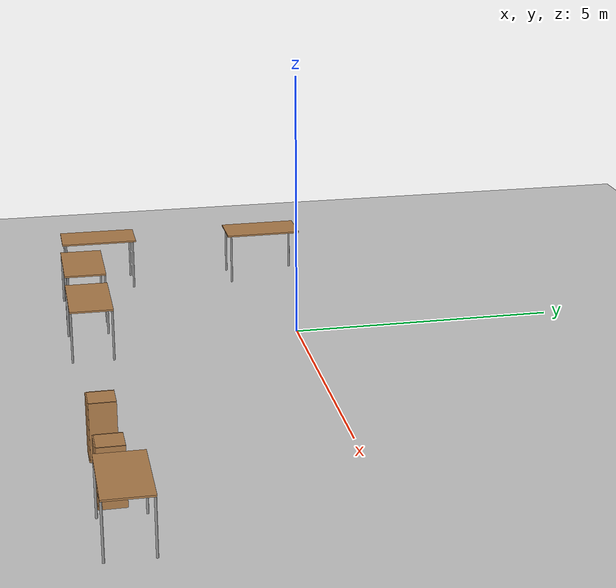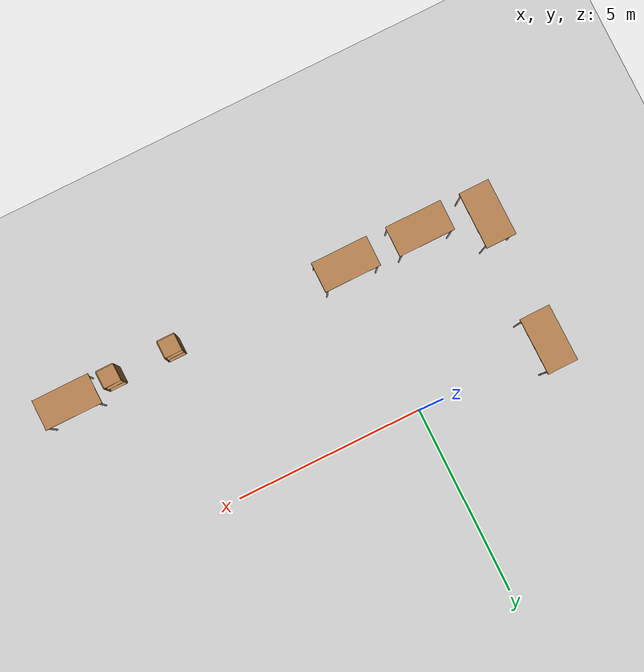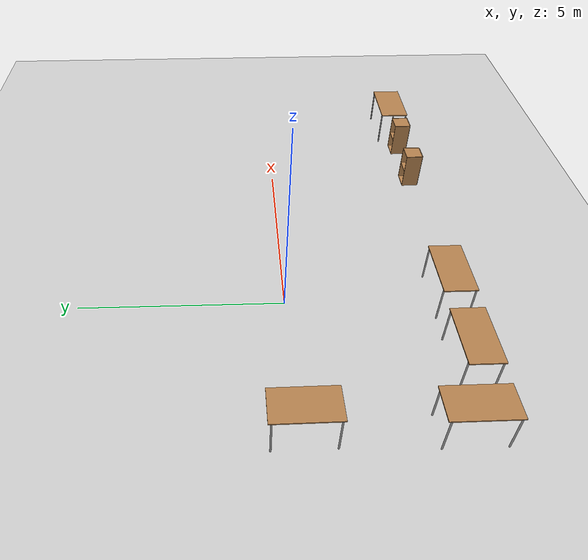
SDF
<sdf version="1.6">
 <world name="default">
  <model name="ground_plane">
   <static>1</static>
   <link name="link">
    <collision name="collision">
     <geometry><plane><normal>0 0 1</normal><size>100 100</size></plane></geometry>
     <surface><friction><ode><mu>100</mu><mu2>50</mu2></ode></friction></surface>
    </collision>
    <visual name="visual">
     <cast_shadows>0</cast_shadows>
     <geometry><plane><normal>0 0 1</normal><size>100 100</size></plane></geometry>
     <material>
      <script><uri>file://media/materials/scripts/gazebo.material</uri><name>Gazebo/Grey</name></script>
     </material>
    </visual>
   </link>
  </model>
  <model name="cabinet_0">
   <static>1</static>
   <link name="cabinet_bottom_plate">
    <inertial>
     <pose>0 0 -1 0 -0 0</pose>
     <inertia><ixx>2.05</ixx><ixy>0</ixy><ixz>0</ixz><iyy>2.05</iyy><iyz>0</iyz><izz>2.05</izz></inertia>
     <mass>25</mass>
    </inertial>
    <collision name="cabinet_bottom_plate_geom">
     <pose>0 0 0.01 0 -0 0</pose>
     <geometry><box><size>0.45 0.45 0.02</size></box></geometry>
    </collision>
    <visual name="cabinet_bottom_plate_geom_visual">
     <pose>0 0 0.01 0 -0 0</pose>
     <geometry><box><size>0.45 0.45 0.02</size></box></geometry>
     <material>
      <script><uri>file://media/materials/scripts/gazebo.material</uri><name>Gazebo/Wood</name></script>
     </material>
    </visual>
    <collision name="cabinet_bottom_plate_geom_cabinet_back_plate">
     <pose>0.235 0 0.51 0 -0 0</pose>
     <geometry><box><size>0.02 0.45 1.02</size></box></geometry>
    </collision>
    <visual name="cabinet_bottom_plate_geom_cabinet_back_plate_visual">
     <pose>0.235 0 0.51 0 -0 0</pose>
     <geometry><box><size>0.02 0.45 1.02</size></box></geometry>
     <material>
      <script><uri>file://media/materials/scripts/gazebo.material</uri><name>Gazebo/Wood</name></script>
     </material>
    </visual>
    <collision name="cabinet_bottom_plate_geom_cabinet_left_plate">
     <pose>0 0.235 0.51 0 -0 0</pose>
     <geometry><box><size>0.45 0.02 1.02</size></box></geometry>
    </collision>
    <visual name="cabinet_bottom_plate_geom_cabinet_left_plate_visual">
     <pose>0 0.235 0.51 0 -0 0</pose>
     <geometry><box><size>0.45 0.02 1.02</size></box></geometry>
     <material>
      <script><uri>file://media/materials/scripts/gazebo.material</uri><name>Gazebo/Wood</name></script>
     </material>
    </visual>
    <collision name="cabinet_bottom_plate_geom_cabinet_middle_plate">
     <pose>0 0 0.51 0 -0 0</pose>
     <geometry><box><size>0.45 0.45 0.02</size></box></geometry>
    </collision>
    <visual name="cabinet_bottom_plate_geom_cabinet_middle_plate_visual">
     <pose>0 0 0.51 0 -0 0</pose>
     <geometry><box><size>0.45 0.45 0.02</size></box></geometry>
     <material>
      <script><uri>file://media/materials/scripts/gazebo.material</uri><name>Gazebo/Wood</name></script>
     </material>
    </visual>
    <collision name="cabinet_bottom_plate_geom_cabinet_right_plate">
     <pose>0 -0.235 0.51 0 -0 0</pose>
     <geometry><box><size>0.45 0.02 1.02</size></box></geometry>
    </collision>
    <visual name="cabinet_bottom_plate_geom_cabinet_right_plate_visual">
     <pose>0 -0.235 0.51 0 -0 0</pose>
     <geometry><box><size>0.45 0.02 1.02</size></box></geometry>
     <material>
      <script><uri>file://media/materials/scripts/gazebo.material</uri><name>Gazebo/Wood</name></script>
     </material>
    </visual>
    <collision name="cabinet_bottom_plate_geom_cabinet_top_plate">
     <pose>0 0 1.01 0 -0 0</pose>
     <geometry><box><size>0.45 0.45 0.02</size></box></geometry>
    </collision>
    <visual name="cabinet_bottom_plate_geom_cabinet_top_plate_visual">
     <pose>0 0 1.01 0 -0 0</pose>
     <geometry><box><size>0.45 0.45 0.02</size></box></geometry>
     <material>
      <script><uri>file://media/materials/scripts/gazebo.material</uri><name>Gazebo/Wood</name></script>
     </material>
    </visual>
   </link>
   <pose>6.4587 -4.07746 0 0 0 -1.56429</pose>
  </model>
  <model name="cabinet_0_clone">
   <static>1</static>
   <link name="cabinet_bottom_plate">
    <inertial>
     <pose>0 0 -1 0 -0 0</pose>
     <inertia><ixx>2.05</ixx><ixy>0</ixy><ixz>0</ixz><iyy>2.05</iyy><iyz>0</iyz><izz>2.05</izz></inertia>
     <mass>25</mass>
    </inertial>
    <collision name="cabinet_bottom_plate_geom">
     <pose>0 0 0.01 0 -0 0</pose>
     <geometry><box><size>0.45 0.45 0.02</size></box></geometry>
    </collision>
    <visual name="cabinet_bottom_plate_geom_visual">
     <pose>0 0 0.01 0 -0 0</pose>
     <geometry><box><size>0.45 0.45 0.02</size></box></geometry>
     <material>
      <script><uri>file://media/materials/scripts/gazebo.material</uri><name>Gazebo/Wood</name></script>
     </material>
    </visual>
    <collision name="cabinet_bottom_plate_geom_cabinet_back_plate">
     <pose>0.235 0 0.51 0 -0 0</pose>
     <geometry><box><size>0.02 0.45 1.02</size></box></geometry>
    </collision>
    <visual name="cabinet_bottom_plate_geom_cabinet_back_plate_visual">
     <pose>0.235 0 0.51 0 -0 0</pose>
     <geometry><box><size>0.02 0.45 1.02</size></box></geometry>
     <material>
      <script><uri>file://media/materials/scripts/gazebo.material</uri><name>Gazebo/Wood</name></script>
     </material>
    </visual>
    <collision name="cabinet_bottom_plate_geom_cabinet_left_plate">
     <pose>0 0.235 0.51 0 -0 0</pose>
     <geometry><box><size>0.45 0.02 1.02</size></box></geometry>
    </collision>
    <visual name="cabinet_bottom_plate_geom_cabinet_left_plate_visual">
     <pose>0 0.235 0.51 0 -0 0</pose>
     <geometry><box><size>0.45 0.02 1.02</size></box></geometry>
     <material>
      <script><uri>file://media/materials/scripts/gazebo.material</uri><name>Gazebo/Wood</name></script>
     </material>
    </visual>
    <collision name="cabinet_bottom_plate_geom_cabinet_middle_plate">
     <pose>0 0 0.51 0 -0 0</pose>
     <geometry><box><size>0.45 0.45 0.02</size></box></geometry>
    </collision>
    <visual name="cabinet_bottom_plate_geom_cabinet_middle_plate_visual">
     <pose>0 0 0.51 0 -0 0</pose>
     <geometry><box><size>0.45 0.45 0.02</size></box></geometry>
     <material>
      <script><uri>file://media/materials/scripts/gazebo.material</uri><name>Gazebo/Wood</name></script>
     </material>
    </visual>
    <collision name="cabinet_bottom_plate_geom_cabinet_right_plate">
     <pose>0 -0.235 0.51 0 -0 0</pose>
     <geometry><box><size>0.45 0.02 1.02</size></box></geometry>
    </collision>
    <visual name="cabinet_bottom_plate_geom_cabinet_right_plate_visual">
     <pose>0 -0.235 0.51 0 -0 0</pose>
     <geometry><box><size>0.45 0.02 1.02</size></box></geometry>
     <material>
      <script><uri>file://media/materials/scripts/gazebo.material</uri><name>Gazebo/Wood</name></script>
     </material>
    </visual>
    <collision name="cabinet_bottom_plate_geom_cabinet_top_plate">
     <pose>0 0 1.01 0 -0 0</pose>
     <geometry><box><size>0.45 0.45 0.02</size></box></geometry>
    </collision>
    <visual name="cabinet_bottom_plate_geom_cabinet_top_plate_visual">
     <pose>0 0 1.01 0 -0 0</pose>
     <geometry><box><size>0.45 0.45 0.02</size></box></geometry>
     <material>
      <script><uri>file://media/materials/scripts/gazebo.material</uri><name>Gazebo/Wood</name></script>
     </material>
    </visual>
   </link>
   <pose>4.81501 -4.07864 0 0 0 -1.56429</pose>
  </model>
  <model name="table">
   <static>1</static>
   <link name="link">
    <collision name="surface">
     <pose>0 0 1 0 -0 0</pose>
     <geometry><box><size>1.5 0.8 0.03</size></box></geometry>
     <surface><friction><ode><mu>0.6</mu><mu2>0.6</mu2></ode></friction></surface>
    </collision>
    <visual name="visual1">
     <pose>0 0 1 0 -0 0</pose>
     <geometry><box><size>1.5 0.8 0.03</size></box></geometry>
     <material>
      <script><uri>file://media/materials/scripts/gazebo.material</uri><name>Gazebo/Wood</name></script>
     </material>
    </visual>
    <collision name="front_left_leg">
     <pose>0.68 0.38 0.5 0 -0 0</pose>
     <geometry><cylinder><radius>0.02</radius><length>1</length></cylinder></geometry>
    </collision>
    <visual name="front_left_leg">
     <pose>0.68 0.38 0.5 0 -0 0</pose>
     <geometry><cylinder><radius>0.02</radius><length>1</length></cylinder></geometry>
     <material>
      <script><uri>file://media/materials/scripts/gazebo.material</uri><name>Gazebo/Grey</name></script>
     </material>
    </visual>
    <collision name="front_right_leg">
     <pose>0.68 -0.38 0.5 0 -0 0</pose>
     <geometry><cylinder><radius>0.02</radius><length>1</length></cylinder></geometry>
    </collision>
    <visual name="front_right_leg">
     <pose>0.68 -0.38 0.5 0 -0 0</pose>
     <geometry><cylinder><radius>0.02</radius><length>1</length></cylinder></geometry>
     <material>
      <script><uri>file://media/materials/scripts/gazebo.material</uri><name>Gazebo/Grey</name></script>
     </material>
    </visual>
    <collision name="back_right_leg">
     <pose>-0.68 -0.38 0.5 0 -0 0</pose>
     <geometry><cylinder><radius>0.02</radius><length>1</length></cylinder></geometry>
    </collision>
    <visual name="back_right_leg">
     <pose>-0.68 -0.38 0.5 0 -0 0</pose>
     <geometry><cylinder><radius>0.02</radius><length>1</length></cylinder></geometry>
     <material>
      <script><uri>file://media/materials/scripts/gazebo.material</uri><name>Gazebo/Grey</name></script>
     </material>
    </visual>
    <collision name="back_left_leg">
     <pose>-0.68 0.38 0.5 0 -0 0</pose>
     <geometry><cylinder><radius>0.02</radius><length>1</length></cylinder></geometry>
    </collision>
    <visual name="back_left_leg">
     <pose>-0.68 0.38 0.5 0 -0 0</pose>
     <geometry><cylinder><radius>0.02</radius><length>1</length></cylinder></geometry>
     <material>
      <script><uri>file://media/materials/scripts/gazebo.material</uri><name>Gazebo/Grey</name></script>
     </material>
    </visual>
   </link>
   <pose>-1.90718 -3.94116 0 0 -0 0</pose>
  </model>
  <model name="table_0">
   <static>1</static>
   <link name="link">
    <collision name="surface">
     <pose>0 0 1 0 -0 0</pose>
     <geometry><box><size>1.5 0.8 0.03</size></box></geometry>
     <surface><friction><ode><mu>0.6</mu><mu2>0.6</mu2></ode></friction></surface>
    </collision>
    <visual name="visual1">
     <pose>0 0 1 0 -0 0</pose>
     <geometry><box><size>1.5 0.8 0.03</size></box></geometry>
     <material>
      <script><uri>file://media/materials/scripts/gazebo.material</uri><name>Gazebo/Wood</name></script>
     </material>
    </visual>
    <collision name="front_left_leg">
     <pose>0.68 0.38 0.5 0 -0 0</pose>
     <geometry><cylinder><radius>0.02</radius><length>1</length></cylinder></geometry>
    </collision>
    <visual name="front_left_leg">
     <pose>0.68 0.38 0.5 0 -0 0</pose>
     <geometry><cylinder><radius>0.02</radius><length>1</length></cylinder></geometry>
     <material>
      <script><uri>file://media/materials/scripts/gazebo.material</uri><name>Gazebo/Grey</name></script>
     </material>
    </visual>
    <collision name="front_right_leg">
     <pose>0.68 -0.38 0.5 0 -0 0</pose>
     <geometry><cylinder><radius>0.02</radius><length>1</length></cylinder></geometry>
    </collision>
    <visual name="front_right_leg">
     <pose>0.68 -0.38 0.5 0 -0 0</pose>
     <geometry><cylinder><radius>0.02</radius><length>1</length></cylinder></geometry>
     <material>
      <script><uri>file://media/materials/scripts/gazebo.material</uri><name>Gazebo/Grey</name></script>
     </material>
    </visual>
    <collision name="back_right_leg">
     <pose>-0.68 -0.38 0.5 0 -0 0</pose>
     <geometry><cylinder><radius>0.02</radius><length>1</length></cylinder></geometry>
    </collision>
    <visual name="back_right_leg">
     <pose>-0.68 -0.38 0.5 0 -0 0</pose>
     <geometry><cylinder><radius>0.02</radius><length>1</length></cylinder></geometry>
     <material>
      <script><uri>file://media/materials/scripts/gazebo.material</uri><name>Gazebo/Grey</name></script>
     </material>
    </visual>
    <collision name="back_left_leg">
     <pose>-0.68 0.38 0.5 0 -0 0</pose>
     <geometry><cylinder><radius>0.02</radius><length>1</length></cylinder></geometry>
    </collision>
    <visual name="back_left_leg">
     <pose>-0.68 0.38 0.5 0 -0 0</pose>
     <geometry><cylinder><radius>0.02</radius><length>1</length></cylinder></geometry>
     <material>
      <script><uri>file://media/materials/scripts/gazebo.material</uri><name>Gazebo/Grey</name></script>
     </material>
    </visual>
   </link>
   <pose>0.099265 -3.95989 0 0 -0 0</pose>
  </model>
  <model name="table_1">
   <static>1</static>
   <link name="link">
    <collision name="surface">
     <pose>0 0 1 0 -0 0</pose>
     <geometry><box><size>1.5 0.8 0.03</size></box></geometry>
     <surface><friction><ode><mu>0.6</mu><mu2>0.6</mu2></ode></friction></surface>
    </collision>
    <visual name="visual1">
     <pose>0 0 1 0 -0 0</pose>
     <geometry><box><size>1.5 0.8 0.03</size></box></geometry>
     <material>
      <script><uri>file://media/materials/scripts/gazebo.material</uri><name>Gazebo/Wood</name></script>
     </material>
    </visual>
    <collision name="front_left_leg">
     <pose>0.68 0.38 0.5 0 -0 0</pose>
     <geometry><cylinder><radius>0.02</radius><length>1</length></cylinder></geometry>
    </collision>
    <visual name="front_left_leg">
     <pose>0.68 0.38 0.5 0 -0 0</pose>
     <geometry><cylinder><radius>0.02</radius><length>1</length></cylinder></geometry>
     <material>
      <script><uri>file://media/materials/scripts/gazebo.material</uri><name>Gazebo/Grey</name></script>
     </material>
    </visual>
    <collision name="front_right_leg">
     <pose>0.68 -0.38 0.5 0 -0 0</pose>
     <geometry><cylinder><radius>0.02</radius><length>1</length></cylinder></geometry>
    </collision>
    <visual name="front_right_leg">
     <pose>0.68 -0.38 0.5 0 -0 0</pose>
     <geometry><cylinder><radius>0.02</radius><length>1</length></cylinder></geometry>
     <material>
      <script><uri>file://media/materials/scripts/gazebo.material</uri><name>Gazebo/Grey</name></script>
     </material>
    </visual>
    <collision name="back_right_leg">
     <pose>-0.68 -0.38 0.5 0 -0 0</pose>
     <geometry><cylinder><radius>0.02</radius><length>1</length></cylinder></geometry>
    </collision>
    <visual name="back_right_leg">
     <pose>-0.68 -0.38 0.5 0 -0 0</pose>
     <geometry><cylinder><radius>0.02</radius><length>1</length></cylinder></geometry>
     <material>
      <script><uri>file://media/materials/scripts/gazebo.material</uri><name>Gazebo/Grey</name></script>
     </material>
    </visual>
    <collision name="back_left_leg">
     <pose>-0.68 0.38 0.5 0 -0 0</pose>
     <geometry><cylinder><radius>0.02</radius><length>1</length></cylinder></geometry>
    </collision>
    <visual name="back_left_leg">
     <pose>-0.68 0.38 0.5 0 -0 0</pose>
     <geometry><cylinder><radius>0.02</radius><length>1</length></cylinder></geometry>
     <material>
      <script><uri>file://media/materials/scripts/gazebo.material</uri><name>Gazebo/Grey</name></script>
     </material>
    </visual>
   </link>
   <pose>-3.53987 -3.52885 0 0 0 -1.56736</pose>
  </model>
  <model name="table_1_clone">
   <static>1</static>
   <link name="link">
    <collision name="surface">
     <pose>0 0 1 0 -0 0</pose>
     <geometry><box><size>1.5 0.8 0.03</size></box></geometry>
     <surface><friction><ode><mu>0.6</mu><mu2>0.6</mu2></ode></friction></surface>
    </collision>
    <visual name="visual1">
     <pose>0 0 1 0 -0 0</pose>
     <geometry><box><size>1.5 0.8 0.03</size></box></geometry>
     <material>
      <script><uri>file://media/materials/scripts/gazebo.material</uri><name>Gazebo/Wood</name></script>
     </material>
    </visual>
    <collision name="front_left_leg">
     <pose>0.68 0.38 0.5 0 -0 0</pose>
     <geometry><cylinder><radius>0.02</radius><length>1</length></cylinder></geometry>
    </collision>
    <visual name="front_left_leg">
     <pose>0.68 0.38 0.5 0 -0 0</pose>
     <geometry><cylinder><radius>0.02</radius><length>1</length></cylinder></geometry>
     <material>
      <script><uri>file://media/materials/scripts/gazebo.material</uri><name>Gazebo/Grey</name></script>
     </material>
    </visual>
    <collision name="front_right_leg">
     <pose>0.68 -0.38 0.5 0 -0 0</pose>
     <geometry><cylinder><radius>0.02</radius><length>1</length></cylinder></geometry>
    </collision>
    <visual name="front_right_leg">
     <pose>0.68 -0.38 0.5 0 -0 0</pose>
     <geometry><cylinder><radius>0.02</radius><length>1</length></cylinder></geometry>
     <material>
      <script><uri>file://media/materials/scripts/gazebo.material</uri><name>Gazebo/Grey</name></script>
     </material>
    </visual>
    <collision name="back_right_leg">
     <pose>-0.68 -0.38 0.5 0 -0 0</pose>
     <geometry><cylinder><radius>0.02</radius><length>1</length></cylinder></geometry>
    </collision>
    <visual name="back_right_leg">
     <pose>-0.68 -0.38 0.5 0 -0 0</pose>
     <geometry><cylinder><radius>0.02</radius><length>1</length></cylinder></geometry>
     <material>
      <script><uri>file://media/materials/scripts/gazebo.material</uri><name>Gazebo/Grey</name></script>
     </material>
    </visual>
    <collision name="back_left_leg">
     <pose>-0.68 0.38 0.5 0 -0 0</pose>
     <geometry><cylinder><radius>0.02</radius><length>1</length></cylinder></geometry>
    </collision>
    <visual name="back_left_leg">
     <pose>-0.68 0.38 0.5 0 -0 0</pose>
     <geometry><cylinder><radius>0.02</radius><length>1</length></cylinder></geometry>
     <material>
      <script><uri>file://media/materials/scripts/gazebo.material</uri><name>Gazebo/Grey</name></script>
     </material>
    </visual>
   </link>
   <pose>-3.4724 -0.126164 0 0 0 -1.56136</pose>
  </model>
  <model name="table_1_clone_1">
   <static>1</static>
   <link name="link">
    <collision name="surface">
     <pose>0 0 1 0 -0 0</pose>
     <geometry><box><size>1.5 0.8 0.03</size></box></geometry>
     <surface><friction><ode><mu>0.6</mu><mu2>0.6</mu2></ode></friction></surface>
    </collision>
    <visual name="visual1">
     <pose>0 0 1 0 -0 0</pose>
     <geometry><box><size>1.5 0.8 0.03</size></box></geometry>
     <material>
      <script><uri>file://media/materials/scripts/gazebo.material</uri><name>Gazebo/Wood</name></script>
     </material>
    </visual>
    <collision name="front_left_leg">
     <pose>0.68 0.38 0.5 0 -0 0</pose>
     <geometry><cylinder><radius>0.02</radius><length>1</length></cylinder></geometry>
    </collision>
    <visual name="front_left_leg">
     <pose>0.68 0.38 0.5 0 -0 0</pose>
     <geometry><cylinder><radius>0.02</radius><length>1</length></cylinder></geometry>
     <material>
      <script><uri>file://media/materials/scripts/gazebo.material</uri><name>Gazebo/Grey</name></script>
     </material>
    </visual>
    <collision name="front_right_leg">
     <pose>0.68 -0.38 0.5 0 -0 0</pose>
     <geometry><cylinder><radius>0.02</radius><length>1</length></cylinder></geometry>
    </collision>
    <visual name="front_right_leg">
     <pose>0.68 -0.38 0.5 0 -0 0</pose>
     <geometry><cylinder><radius>0.02</radius><length>1</length></cylinder></geometry>
     <material>
      <script><uri>file://media/materials/scripts/gazebo.material</uri><name>Gazebo/Grey</name></script>
     </material>
    </visual>
    <collision name="back_right_leg">
     <pose>-0.68 -0.38 0.5 0 -0 0</pose>
     <geometry><cylinder><radius>0.02</radius><length>1</length></cylinder></geometry>
    </collision>
    <visual name="back_right_leg">
     <pose>-0.68 -0.38 0.5 0 -0 0</pose>
     <geometry><cylinder><radius>0.02</radius><length>1</length></cylinder></geometry>
     <material>
      <script><uri>file://media/materials/scripts/gazebo.material</uri><name>Gazebo/Grey</name></script>
     </material>
    </visual>
    <collision name="back_left_leg">
     <pose>-0.68 0.38 0.5 0 -0 0</pose>
     <geometry><cylinder><radius>0.02</radius><length>1</length></cylinder></geometry>
    </collision>
    <visual name="back_left_leg">
     <pose>-0.68 0.38 0.5 0 -0 0</pose>
     <geometry><cylinder><radius>0.02</radius><length>1</length></cylinder></geometry>
     <material>
      <script><uri>file://media/materials/scripts/gazebo.material</uri><name>Gazebo/Grey</name></script>
     </material>
    </visual>
   </link>
   <pose>7.62986 -3.96625 0 0 -0 0</pose>
  </model>
 </world>
</sdf>
